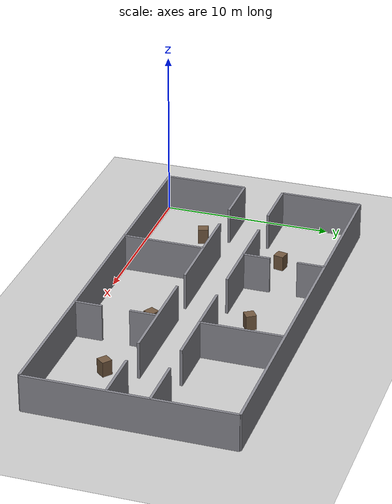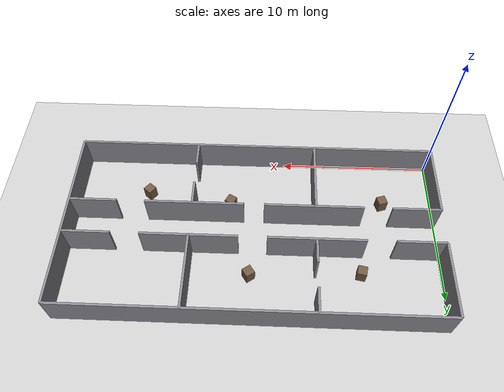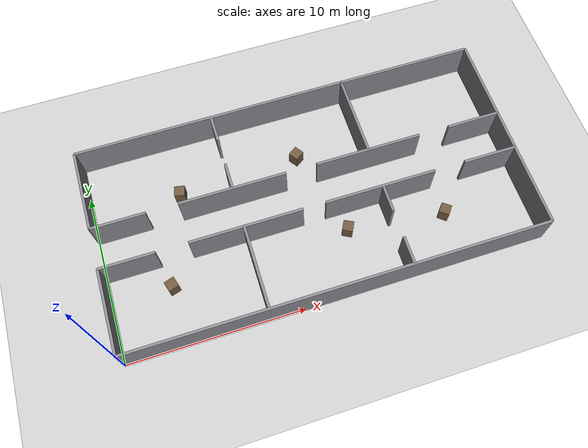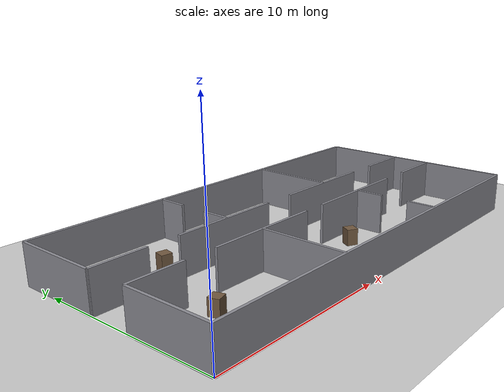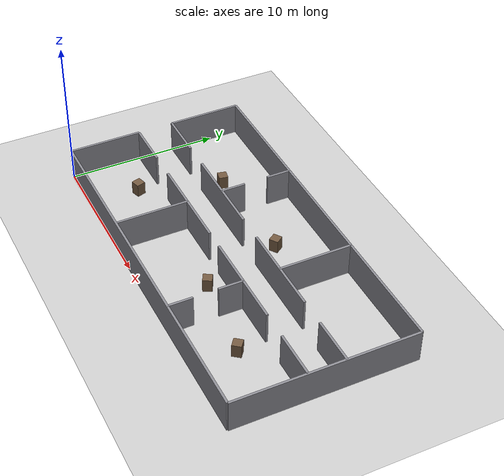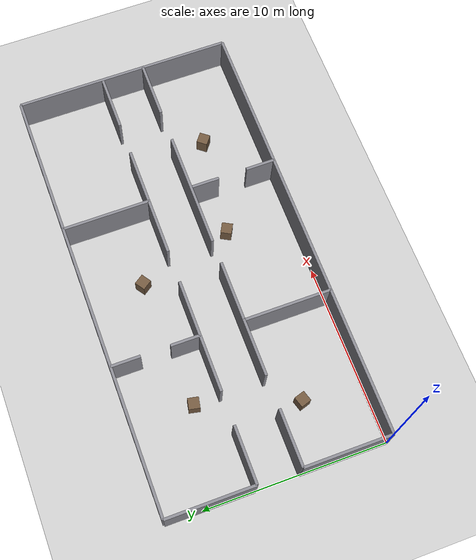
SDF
<sdf version="1.10">
 <world name="sar_building_v2">
  <physics name="1ms" type="ignored">
   <max_step_size>0.001</max_step_size>
   <real_time_factor>1</real_time_factor>
   <real_time_update_rate>1000</real_time_update_rate>
  </physics>
  <plugin name="gz::sim::systems::Physics" filename="gz-sim-physics-system"/>
  <plugin name="gz::sim::systems::UserCommands" filename="gz-sim-user-commands-system"/>
  <plugin name="gz::sim::systems::SceneBroadcaster" filename="gz-sim-scene-broadcaster-system"/>
  <plugin name="gz::sim::systems::Contact" filename="gz-sim-contact-system"/>
  <plugin filename="gz-sim-imu-system" name="gz::sim::systems::Imu"/>
  <plugin filename="gz-sim-sensors-system" name="gz::sim::systems::Sensors">
   <render_engine>ogre2</render_engine>
  </plugin>
  <gravity>0 0 -9.8</gravity>
  <magnetic_field>5.5645e-06 2.28758e-05 -4.23884e-05</magnetic_field>
  <atmosphere type="adiabatic"/>
  <scene><ambient>0.4 0.4 0.4 1</ambient><background>0.7 0.7 0.7 1</background><shadows>true</shadows></scene>
  <model name="ground_plane">
   <static>true</static>
   <link name="link">
    <collision name="collision">
     <geometry><plane><normal>0 0 1</normal><size>40 30</size></plane></geometry>
    </collision>
    <visual name="visual">
     <geometry><plane><normal>0 0 1</normal><size>40 30</size></plane></geometry>
     <material><ambient>0.8 0.8 0.8 1</ambient><diffuse>0.8 0.8 0.8 1</diffuse></material>
    </visual>
    <pose>12 6 0 0 0 0</pose>
    <inertial>
     <mass>1</mass>
     <inertia><ixx>1</ixx><ixy>0</ixy><ixz>0</ixz><iyy>1</iyy><iyz>0</iyz><izz>1</izz></inertia>
    </inertial>
   </link>
  </model>
  <light name="sun" type="directional">
   <pose>12 6 20 0 0 0</pose>
   <intensity>1</intensity>
   <direction>-0.5 0.1 -0.9</direction>
   <diffuse>0.8 0.8 0.8 1</diffuse>
   <specular>0.2 0.2 0.2 1</specular>
   <attenuation>
    <range>1000</range>
    <linear>0.01</linear>
    <constant>0.9</constant>
    <quadratic>0.001</quadratic>
   </attenuation>
   <spot><inner_angle>0</inner_angle><outer_angle>0</outer_angle><falloff>0</falloff></spot>
  </light>
  <model name="sar_building_structure">
   <static>true</static>
   <link name="wall_corr_south_A">
    <pose>1.55 4.8 1.1 0 0 0</pose>
    <collision name="c"><geometry><box><size>3.1 0.15 2.2</size></box></geometry></collision>
    <visual name="v">
     <geometry><box><size>3.1 0.15 2.2</size></box></geometry>
     <material><ambient>0.55 0.55 0.58 1</ambient><diffuse>0.55 0.55 0.58 1</diffuse></material>
    </visual>
   </link>
   <link name="wall_corr_south_B">
    <pose>8.125 4.8 1.1 0 0 0</pose>
    <collision name="c"><geometry><box><size>6.45 0.15 2.2</size></box></geometry></collision>
    <visual name="v">
     <geometry><box><size>6.45 0.15 2.2</size></box></geometry>
     <material><ambient>0.55 0.55 0.58 1</ambient><diffuse>0.55 0.55 0.58 1</diffuse></material>
    </visual>
   </link>
   <link name="wall_corr_south_C">
    <pose>15.875 4.8 1.1 0 0 0</pose>
    <collision name="c"><geometry><box><size>6.45 0.15 2.2</size></box></geometry></collision>
    <visual name="v">
     <geometry><box><size>6.45 0.15 2.2</size></box></geometry>
     <material><ambient>0.55 0.55 0.58 1</ambient><diffuse>0.55 0.55 0.58 1</diffuse></material>
    </visual>
   </link>
   <link name="wall_corr_south_D">
    <pose>22.45 4.8 1.1 0 0 0</pose>
    <collision name="c"><geometry><box><size>3.1 0.15 2.2</size></box></geometry></collision>
    <visual name="v">
     <geometry><box><size>3.1 0.15 2.2</size></box></geometry>
     <material><ambient>0.55 0.55 0.58 1</ambient><diffuse>0.55 0.55 0.58 1</diffuse></material>
    </visual>
   </link>
   <link name="wall_corr_north_E">
    <pose>1.55 7.2 1.1 0 0 0</pose>
    <collision name="c"><geometry><box><size>3.1 0.15 2.2</size></box></geometry></collision>
    <visual name="v">
     <geometry><box><size>3.1 0.15 2.2</size></box></geometry>
     <material><ambient>0.55 0.55 0.58 1</ambient><diffuse>0.55 0.55 0.58 1</diffuse></material>
    </visual>
   </link>
   <link name="wall_corr_north_F">
    <pose>8.0 7.2 1.1 0 0 0</pose>
    <collision name="c"><geometry><box><size>6.2 0.15 2.2</size></box></geometry></collision>
    <visual name="v">
     <geometry><box><size>6.2 0.15 2.2</size></box></geometry>
     <material><ambient>0.55 0.55 0.58 1</ambient><diffuse>0.55 0.55 0.58 1</diffuse></material>
    </visual>
   </link>
   <link name="wall_corr_north_G">
    <pose>16.0 7.2 1.1 0 0 0</pose>
    <collision name="c"><geometry><box><size>6.2 0.15 2.2</size></box></geometry></collision>
    <visual name="v">
     <geometry><box><size>6.2 0.15 2.2</size></box></geometry>
     <material><ambient>0.55 0.55 0.58 1</ambient><diffuse>0.55 0.55 0.58 1</diffuse></material>
    </visual>
   </link>
   <link name="wall_corr_north_H">
    <pose>22.45 7.2 1.1 0 0 0</pose>
    <collision name="c"><geometry><box><size>3.1 0.15 2.2</size></box></geometry></collision>
    <visual name="v">
     <geometry><box><size>3.1 0.15 2.2</size></box></geometry>
     <material><ambient>0.55 0.55 0.58 1</ambient><diffuse>0.55 0.55 0.58 1</diffuse></material>
    </visual>
   </link>
   <link name="wall_div_south_I">
    <pose>8 2.4 1.1 0 0 0</pose>
    <collision name="c"><geometry><box><size>0.15 4.8 2.2</size></box></geometry></collision>
    <visual name="v">
     <geometry><box><size>0.15 4.8 2.2</size></box></geometry>
     <material><ambient>0.55 0.55 0.58 1</ambient><diffuse>0.55 0.55 0.58 1</diffuse></material>
    </visual>
   </link>
   <link name="wall_div_south_J1">
    <pose>16 0.8 1.1 0 0 0</pose>
    <collision name="c"><geometry><box><size>0.15 1.6 2.2</size></box></geometry></collision>
    <visual name="v">
     <geometry><box><size>0.15 1.6 2.2</size></box></geometry>
     <material><ambient>0.55 0.55 0.58 1</ambient><diffuse>0.55 0.55 0.58 1</diffuse></material>
    </visual>
   </link>
   <link name="wall_div_south_J2">
    <pose>16 4.0 1.1 0 0 0</pose>
    <collision name="c"><geometry><box><size>0.15 1.6 2.2</size></box></geometry></collision>
    <visual name="v">
     <geometry><box><size>0.15 1.6 2.2</size></box></geometry>
     <material><ambient>0.55 0.55 0.58 1</ambient><diffuse>0.55 0.55 0.58 1</diffuse></material>
    </visual>
   </link>
   <link name="wall_div_north_K1">
    <pose>8 8.0 1.1 0 0 0</pose>
    <collision name="c"><geometry><box><size>0.15 1.6 2.2</size></box></geometry></collision>
    <visual name="v">
     <geometry><box><size>0.15 1.6 2.2</size></box></geometry>
     <material><ambient>0.55 0.55 0.58 1</ambient><diffuse>0.55 0.55 0.58 1</diffuse></material>
    </visual>
   </link>
   <link name="wall_div_north_K2">
    <pose>8 11.2 1.1 0 0 0</pose>
    <collision name="c"><geometry><box><size>0.15 1.6 2.2</size></box></geometry></collision>
    <visual name="v">
     <geometry><box><size>0.15 1.6 2.2</size></box></geometry>
     <material><ambient>0.55 0.55 0.58 1</ambient><diffuse>0.55 0.55 0.58 1</diffuse></material>
    </visual>
   </link>
   <link name="wall_div_north_L">
    <pose>16 9.6 1.1 0 0 0</pose>
    <collision name="c"><geometry><box><size>0.15 4.8 2.2</size></box></geometry></collision>
    <visual name="v">
     <geometry><box><size>0.15 4.8 2.2</size></box></geometry>
     <material><ambient>0.55 0.55 0.58 1</ambient><diffuse>0.55 0.55 0.58 1</diffuse></material>
    </visual>
   </link>
   <link name="wall_ext_south_M">
    <pose>12 0 1.1 0 0 0</pose>
    <collision name="c"><geometry><box><size>24 0.15 2.2</size></box></geometry></collision>
    <visual name="v">
     <geometry><box><size>24 0.15 2.2</size></box></geometry>
     <material><ambient>0.55 0.55 0.58 1</ambient><diffuse>0.55 0.55 0.58 1</diffuse></material>
    </visual>
   </link>
   <link name="wall_ext_north_N">
    <pose>12 12 1.1 0 0 0</pose>
    <collision name="c"><geometry><box><size>24 0.15 2.2</size></box></geometry></collision>
    <visual name="v">
     <geometry><box><size>24 0.15 2.2</size></box></geometry>
     <material><ambient>0.55 0.55 0.58 1</ambient><diffuse>0.55 0.55 0.58 1</diffuse></material>
    </visual>
   </link>
   <link name="wall_ext_west_sub1">
    <pose>0 2.4 1.1 0 0 0</pose>
    <collision name="c"><geometry><box><size>0.15 4.8 2.2</size></box></geometry></collision>
    <visual name="v">
     <geometry><box><size>0.15 4.8 2.2</size></box></geometry>
     <material><ambient>0.55 0.55 0.58 1</ambient><diffuse>0.55 0.55 0.58 1</diffuse></material>
    </visual>
   </link>
   <link name="wall_ext_west_sub2">
    <pose>0 9.6 1.1 0 0 0</pose>
    <collision name="c"><geometry><box><size>0.15 4.8 2.2</size></box></geometry></collision>
    <visual name="v">
     <geometry><box><size>0.15 4.8 2.2</size></box></geometry>
     <material><ambient>0.55 0.55 0.58 1</ambient><diffuse>0.55 0.55 0.58 1</diffuse></material>
    </visual>
   </link>
   <link name="wall_ext_east_O">
    <pose>24 6 1.1 0 0 0</pose>
    <collision name="c"><geometry><box><size>0.15 12 2.2</size></box></geometry></collision>
    <visual name="v">
     <geometry><box><size>0.15 12 2.2</size></box></geometry>
     <material><ambient>0.55 0.55 0.58 1</ambient><diffuse>0.55 0.55 0.58 1</diffuse></material>
    </visual>
   </link>
   <link name="clutter_south1_a">
    <pose>3.4 3.3 0.45 0 0 0.3</pose>
    <collision name="c"><geometry><box><size>0.6 0.6 0.9</size></box></geometry></collision>
    <visual name="v">
     <geometry><box><size>0.6 0.6 0.9</size></box></geometry>
     <material><ambient>0.45 0.35 0.25 1</ambient><diffuse>0.45 0.35 0.25 1</diffuse></material>
    </visual>
   </link>
   <link name="clutter_south2_a">
    <pose>13.6 3.6 0.45 0 0 -0.5</pose>
    <collision name="c"><geometry><box><size>0.6 0.6 0.9</size></box></geometry></collision>
    <visual name="v">
     <geometry><box><size>0.6 0.6 0.9</size></box></geometry>
     <material><ambient>0.45 0.35 0.25 1</ambient><diffuse>0.45 0.35 0.25 1</diffuse></material>
    </visual>
   </link>
   <link name="clutter_south3_a">
    <pose>19.2 2.9 0.45 0 0 0.9</pose>
    <collision name="c"><geometry><box><size>0.6 0.6 0.9</size></box></geometry></collision>
    <visual name="v">
     <geometry><box><size>0.6 0.6 0.9</size></box></geometry>
     <material><ambient>0.45 0.35 0.25 1</ambient><diffuse>0.45 0.35 0.25 1</diffuse></material>
    </visual>
   </link>
   <link name="clutter_north1_a">
    <pose>5.1 8.6 0.45 0 0 -0.2</pose>
    <collision name="c"><geometry><box><size>0.6 0.6 0.9</size></box></geometry></collision>
    <visual name="v">
     <geometry><box><size>0.6 0.6 0.9</size></box></geometry>
     <material><ambient>0.45 0.35 0.25 1</ambient><diffuse>0.45 0.35 0.25 1</diffuse></material>
    </visual>
   </link>
   <link name="clutter_north2_a">
    <pose>12.2 8.9 0.45 0 0 0.6</pose>
    <collision name="c"><geometry><box><size>0.6 0.6 0.9</size></box></geometry></collision>
    <visual name="v">
     <geometry><box><size>0.6 0.6 0.9</size></box></geometry>
     <material><ambient>0.45 0.35 0.25 1</ambient><diffuse>0.45 0.35 0.25 1</diffuse></material>
    </visual>
   </link>
  </model>
 </world>
</sdf>
